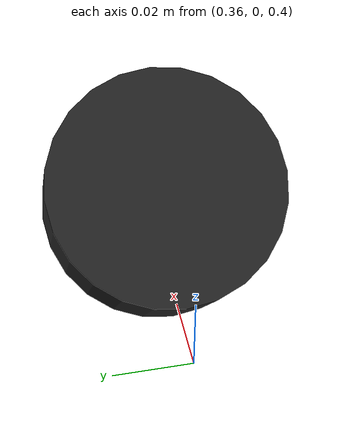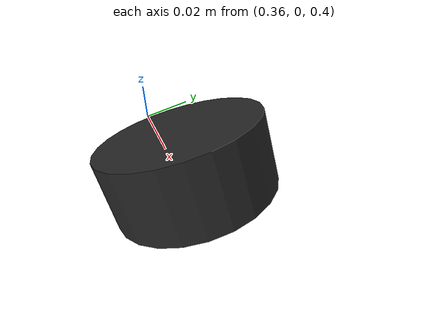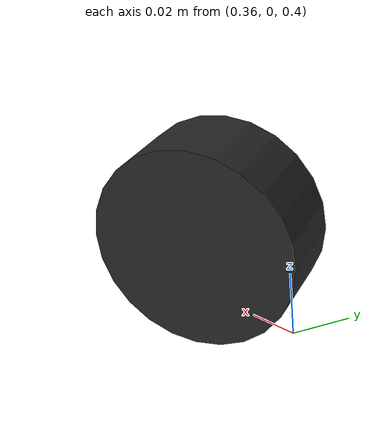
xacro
<?xml version="1.0"?>
<robot xmlns:xacro="http://www.ros.org/wiki/xacro" name="vision_camera">

  <!-- World anchor — fixed to the SDF world frame by Gazebo -->
  <link name="world"/>

  <!-- Camera body: L515 form factor — 61 mm diameter × 26 mm tall cylinder -->
  <link name="camera_link">
    <visual>
      <origin xyz="0 0 0" rpy="0 0 0"/>
      <geometry>
        <cylinder radius="0.0305" length="0.026"/>
      </geometry>
      <material name="realsense_body">
        <color rgba="0.15 0.15 0.15 1.0"/>
      </material>
    </visual>
    <inertial>
      <mass value="0.100"/>
      <inertia ixx="0.000041" iyy="0.000041" izz="0.000047"
               ixy="0" ixz="0" iyz="0"/>
    </inertial>
  </link>

  <joint name="camera_world_joint" type="fixed">
    <parent link="world"/>
    <child link="camera_link"/>
    <origin xyz="0.4 0.0 0.42" rpy="0 0.7 3.14159"/>
  </joint>

  <!-- ROS optical frame convention: Z forward, X right, Y down. -->
  <link name="camera_optical_frame"/>

  <joint name="camera_optical_joint" type="fixed">
    <parent link="camera_link"/>
    <child link="camera_optical_frame"/>
    <origin xyz="0 0 0" rpy="-1.5708 0 -1.5708"/>
  </joint>

  <gazebo reference="camera_optical_frame">
    <sensor name="l515_vision" type="rgbd_camera">
      <camera>
        <horizontal_fov>1.2217</horizontal_fov>
        <image>
          <width>640</width>
          <height>480</height>   <!-- 4:3 → V FOV ≈ 55°; matches real L515 -->
          <format>R8G8B8</format>
        </image>
        <clip>
          <near>0.25</near>   <!-- L515 minimum range: 0.25 m -->
          <far>9.0</far>
        </clip>
        <noise>
          <type>gaussian</type>
          <mean>0.0</mean>
          <stddev>0.003</stddev>  <!-- ~3 mm; ToF is far more precise than stereo -->
        </noise>
      </camera>
      <always_on>true</always_on>
      <update_rate>30</update_rate>
      <visualize>true</visualize>
      <topic>vision</topic>
      <gz_frame_id>camera_optical_frame</gz_frame_id>
    </sensor>
  </gazebo>

</robot>
